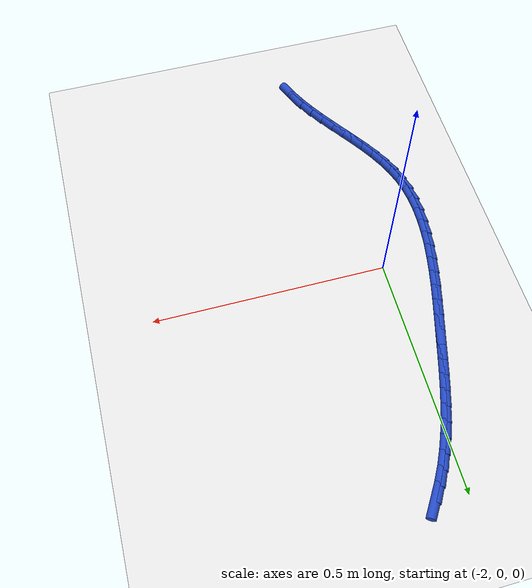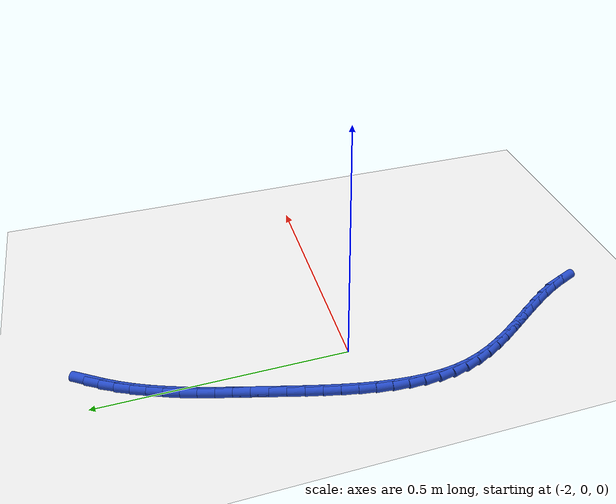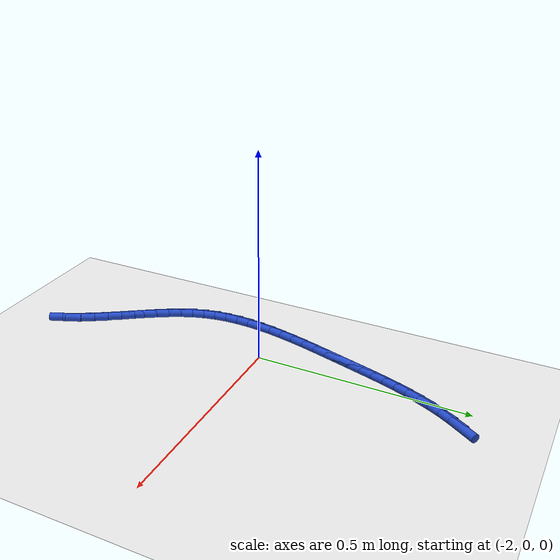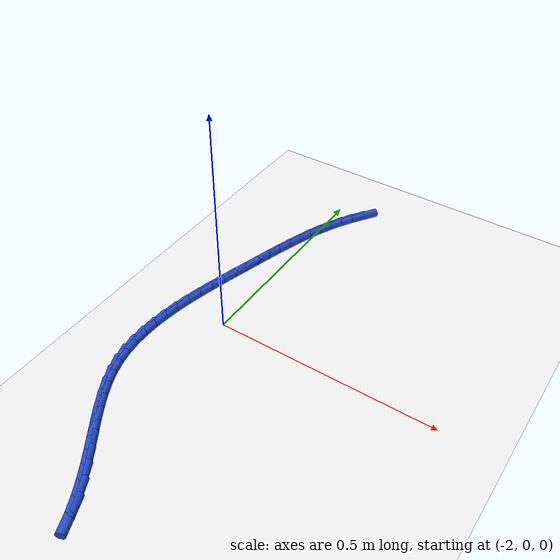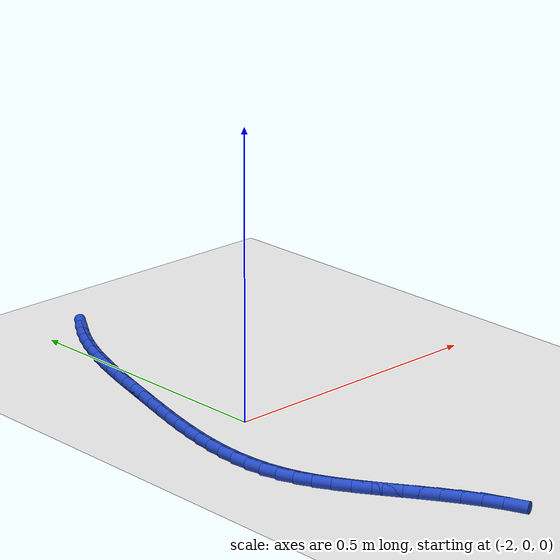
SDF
<sdf version="1.6">
 <world name="default">
  <model name="ground_plane">
   <static>1</static>
   <link name="link">
    <collision name="collision">
     <geometry><plane><normal>0 0 1</normal><size>100 100</size></plane></geometry>
     <surface><friction><ode><mu>100</mu><mu2>50</mu2></ode></friction></surface>
    </collision>
    <visual name="visual">
     <cast_shadows>0</cast_shadows>
     <geometry><plane><normal>0 0 1</normal><size>100 100</size></plane></geometry>
     <material>
      <script><uri>file://media/materials/scripts/gazebo.material</uri><name>Gazebo/WhiteGlow</name></script>
     </material>
    </visual>
   </link>
  </model>
  <model name="line">
   <link name="link_88">
    <pose>-1.9357134245684393 0.49205185494261655 0.01 0 1.57 0.9856352594177191</pose>
    <collision name="collision">
     <geometry><cylinder><radius>0.01</radius><length>0.08</length></cylinder></geometry>
    </collision>
    <visual name="visual">
     <material>
      <script><name>Gazebo/Blue</name><uri>file://media/materials/scripts/gazebo.material</uri></script>
     </material>
     <geometry><cylinder><radius>0.01</radius><length>0.08</length></cylinder></geometry>
    </visual>
   </link>
   <link name="link_89">
    <pose>-1.9528145610271608 0.4662415449356742 0.01 0 1.57 1.0383071461539708</pose>
    <collision name="collision">
     <geometry><cylinder><radius>0.01</radius><length>0.08</length></cylinder></geometry>
    </collision>
    <visual name="visual">
     <material>
      <script><name>Gazebo/Blue</name><uri>file://media/materials/scripts/gazebo.material</uri></script>
     </material>
     <geometry><cylinder><radius>0.01</radius><length>0.08</length></cylinder></geometry>
    </visual>
   </link>
   <link name="link_90">
    <pose>-1.9684713385492372 0.43967156175171307 0.01 0 1.57 1.0934983687333055</pose>
    <collision name="collision">
     <geometry><cylinder><radius>0.01</radius><length>0.08</length></cylinder></geometry>
    </collision>
    <visual name="visual">
     <material>
      <script><name>Gazebo/Blue</name><uri>file://media/materials/scripts/gazebo.material</uri></script>
     </material>
     <geometry><cylinder><radius>0.01</radius><length>0.08</length></cylinder></geometry>
    </visual>
   </link>
   <link name="link_91">
    <pose>-1.9826361275115976 0.41228312017163987 0.01 0 1.57 1.1425686386255236</pose>
    <collision name="collision">
     <geometry><cylinder><radius>0.01</radius><length>0.08</length></cylinder></geometry>
    </collision>
    <visual name="visual">
     <material>
      <script><name>Gazebo/Blue</name><uri>file://media/materials/scripts/gazebo.material</uri></script>
     </material>
     <geometry><cylinder><radius>0.01</radius><length>0.08</length></cylinder></geometry>
    </visual>
   </link>
   <link name="link_92">
    <pose>-1.995488208791405 0.3841282246084329 0.01 0 1.57 1.184762545801811</pose>
    <collision name="collision">
     <geometry><cylinder><radius>0.01</radius><length>0.08</length></cylinder></geometry>
    </collision>
    <visual name="visual">
     <material>
      <script><name>Gazebo/Blue</name><uri>file://media/materials/scripts/gazebo.material</uri></script>
     </material>
     <geometry><cylinder><radius>0.01</radius><length>0.08</length></cylinder></geometry>
    </visual>
   </link>
   <link name="link_93">
    <pose>-2.0072190455945833 0.3552648275282453 0.01 0 1.57 1.2199706552939367</pose>
    <collision name="collision">
     <geometry><cylinder><radius>0.01</radius><length>0.08</length></cylinder></geometry>
    </collision>
    <visual name="visual">
     <material>
      <script><name>Gazebo/Blue</name><uri>file://media/materials/scripts/gazebo.material</uri></script>
     </material>
     <geometry><cylinder><radius>0.01</radius><length>0.08</length></cylinder></geometry>
    </visual>
   </link>
   <link name="link_94">
    <pose>-2.018020101127056 0.3257508813972297 0.01 0 1.57 1.2482321865770525</pose>
    <collision name="collision">
     <geometry><cylinder><radius>0.01</radius><length>0.08</length></cylinder></geometry>
    </collision>
    <visual name="visual">
     <material>
      <script><name>Gazebo/Blue</name><uri>file://media/materials/scripts/gazebo.material</uri></script>
     </material>
     <geometry><cylinder><radius>0.01</radius><length>0.08</length></cylinder></geometry>
    </visual>
   </link>
   <link name="link_95">
    <pose>-2.0280828385947474 0.2956443386815381 0.01 0 1.57 1.2696811562173727</pose>
    <collision name="collision">
     <geometry><cylinder><radius>0.01</radius><length>0.08</length></cylinder></geometry>
    </collision>
    <visual name="visual">
     <material>
      <script><name>Gazebo/Blue</name><uri>file://media/materials/scripts/gazebo.material</uri></script>
     </material>
     <geometry><cylinder><radius>0.01</radius><length>0.08</length></cylinder></geometry>
    </visual>
   </link>
   <link name="link_96">
    <pose>-2.037598721203581 0.26500315184732415 0.01 0 1.57 1.284503144871986</pose>
    <collision name="collision">
     <geometry><cylinder><radius>0.01</radius><length>0.08</length></cylinder></geometry>
    </collision>
    <visual name="visual">
     <material>
      <script><name>Gazebo/Blue</name><uri>file://media/materials/scripts/gazebo.material</uri></script>
     </material>
     <geometry><cylinder><radius>0.01</radius><length>0.08</length></cylinder></geometry>
    </visual>
   </link>
   <link name="link_97">
    <pose>-2.0467592121594804 0.23388527336074005 0.01 0 1.57 1.2929041986908916</pose>
    <collision name="collision">
     <geometry><cylinder><radius>0.01</radius><length>0.08</length></cylinder></geometry>
    </collision>
    <visual name="visual">
     <material>
      <script><name>Gazebo/Blue</name><uri>file://media/materials/scripts/gazebo.material</uri></script>
     </material>
     <geometry><cylinder><radius>0.01</radius><length>0.08</length></cylinder></geometry>
    </visual>
   </link>
   <link name="link_98">
    <pose>-2.0557557746683717 0.2023486556879382 0.01 0 1.57 1.295132572178215</pose>
    <collision name="collision">
     <geometry><cylinder><radius>0.01</radius><length>0.08</length></cylinder></geometry>
    </collision>
    <visual name="visual">
     <material>
      <script><name>Gazebo/Blue</name><uri>file://media/materials/scripts/gazebo.material</uri></script>
     </material>
     <geometry><cylinder><radius>0.01</radius><length>0.08</length></cylinder></geometry>
    </visual>
   </link>
   <link name="link_99">
    <pose>-2.0647784094436585 0.17045137681444933 0.01 0 1.57 1.2954520180588465</pose>
    <collision name="collision">
     <geometry><cylinder><radius>0.01</radius><length>0.08</length></cylinder></geometry>
    </collision>
    <visual name="visual">
     <material>
      <script><name>Gazebo/Blue</name><uri>file://media/materials/scripts/gazebo.material</uri></script>
     </material>
     <geometry><cylinder><radius>0.01</radius><length>0.08</length></cylinder></geometry>
    </visual>
   </link>
   <link name="link_100">
    <pose>-2.073872007855445 0.13826396883017134 0.01 0 1.57 1.301348920833544</pose>
    <collision name="collision">
     <geometry><cylinder><radius>0.01</radius><length>0.08</length></cylinder></geometry>
    </collision>
    <visual name="visual">
     <material>
      <script><name>Gazebo/Blue</name><uri>file://media/materials/scripts/gazebo.material</uri></script>
     </material>
     <geometry><cylinder><radius>0.01</radius><length>0.08</length></cylinder></geometry>
    </visual>
   </link>
   <link name="link_101">
    <pose>-2.0828153255999458 0.10587980509340747 0.01 0 1.57 1.313628478560665</pose>
    <collision name="collision">
     <geometry><cylinder><radius>0.01</radius><length>0.08</length></cylinder></geometry>
    </collision>
    <visual name="visual">
     <material>
      <script><name>Gazebo/Blue</name><uri>file://media/materials/scripts/gazebo.material</uri></script>
     </material>
     <geometry><cylinder><radius>0.01</radius><length>0.08</length></cylinder></geometry>
    </visual>
   </link>
   <link name="link_102">
    <pose>-2.0913586224732614 0.07339470464174094 0.01 0 1.57 1.3324628008331085</pose>
    <collision name="collision">
     <geometry><cylinder><radius>0.01</radius><length>0.08</length></cylinder></geometry>
    </collision>
    <visual name="visual">
     <material>
      <script><name>Gazebo/Blue</name><uri>file://media/materials/scripts/gazebo.material</uri></script>
     </material>
     <geometry><cylinder><radius>0.01</radius><length>0.08</length></cylinder></geometry>
    </visual>
   </link>
   <link name="link_103">
    <pose>-2.0992521582714923 0.04090448651275394 0.01 0 1.57 1.3581902044370504</pose>
    <collision name="collision">
     <geometry><cylinder><radius>0.01</radius><length>0.08</length></cylinder></geometry>
    </collision>
    <visual name="visual">
     <material>
      <script><name>Gazebo/Blue</name><uri>file://media/materials/scripts/gazebo.material</uri></script>
     </material>
     <geometry><cylinder><radius>0.01</radius><length>0.08</length></cylinder></geometry>
    </visual>
   </link>
   <link name="link_104">
    <pose>-2.106246192790738 0.008504969744029056 0.01 0 1.57 1.3913069184945528</pose>
    <collision name="collision">
     <geometry><cylinder><radius>0.01</radius><length>0.08</length></cylinder></geometry>
    </collision>
    <visual name="visual">
     <material>
      <script><name>Gazebo/Blue</name><uri>file://media/materials/scripts/gazebo.material</uri></script>
     </material>
     <geometry><cylinder><radius>0.01</radius><length>0.08</length></cylinder></geometry>
    </visual>
   </link>
   <link name="link_105">
    <pose>-2.1120909858270993 -0.02370802662685119 0.01 0 1.57 1.4324524070538862</pose>
    <collision name="collision">
     <geometry><cylinder><radius>0.01</radius><length>0.08</length></cylinder></geometry>
    </collision>
    <visual name="visual">
     <material>
      <script><name>Gazebo/Blue</name><uri>file://media/materials/scripts/gazebo.material</uri></script>
     </material>
     <geometry><cylinder><radius>0.01</radius><length>0.08</length></cylinder></geometry>
    </visual>
   </link>
   <link name="link_106">
    <pose>-2.1165367971766753 -0.05563868356230499 0.01 0 1.57 1.4823787091427376</pose>
    <collision name="collision">
     <geometry><cylinder><radius>0.01</radius><length>0.08</length></cylinder></geometry>
    </collision>
    <visual name="visual">
     <material>
      <script><name>Gazebo/Blue</name><uri>file://media/materials/scripts/gazebo.material</uri></script>
     </material>
     <geometry><cylinder><radius>0.01</radius><length>0.08</length></cylinder></geometry>
    </visual>
   </link>
   <link name="link_107">
    <pose>-2.1193338866355673 -0.08719118202474826 0.01 0 1.57 1.5418896405621123</pose>
    <collision name="collision">
     <geometry><cylinder><radius>0.01</radius><length>0.08</length></cylinder></geometry>
    </collision>
    <visual name="visual">
     <material>
      <script><name>Gazebo/Blue</name><uri>file://media/materials/scripts/gazebo.material</uri></script>
     </material>
     <geometry><cylinder><radius>0.01</radius><length>0.08</length></cylinder></geometry>
    </visual>
   </link>
   <link name="link_108">
    <pose>-2.1202325139998752 -0.11826970297659928 0.01 0 1.57 -1.5298612527166557</pose>
    <collision name="collision">
     <geometry><cylinder><radius>0.01</radius><length>0.08</length></cylinder></geometry>
    </collision>
    <visual name="visual">
     <material>
      <script><name>Gazebo/Blue</name><uri>file://media/materials/scripts/gazebo.material</uri></script>
     </material>
     <geometry><cylinder><radius>0.01</radius><length>0.08</length></cylinder></geometry>
    </visual>
   </link>
   <link name="link_109">
    <pose>-2.118982939065699 -0.14877842738027544 0.01 0 1.57 -1.4491764332873172</pose>
    <collision name="collision">
     <geometry><cylinder><radius>0.01</radius><length>0.08</length></cylinder></geometry>
    </collision>
    <visual name="visual">
     <material>
      <script><name>Gazebo/Blue</name><uri>file://media/materials/scripts/gazebo.material</uri></script>
     </material>
     <geometry><cylinder><radius>0.01</radius><length>0.08</length></cylinder></geometry>
    </visual>
   </link>
   <link name="link_110">
    <pose>-2.115335421629138 -0.17862153619819415 0.01 0 1.57 -1.3576191493984873</pose>
    <collision name="collision">
     <geometry><cylinder><radius>0.01</radius><length>0.08</length></cylinder></geometry>
    </collision>
    <visual name="visual">
     <material>
      <script><name>Gazebo/Blue</name><uri>file://media/materials/scripts/gazebo.material</uri></script>
     </material>
     <geometry><cylinder><radius>0.01</radius><length>0.08</length></cylinder></geometry>
    </visual>
   </link>
   <link name="link_111">
    <pose>-2.1090402214862936 -0.207703210392773 0.01 0 1.57 -1.2576102328374283</pose>
    <collision name="collision">
     <geometry><cylinder><radius>0.01</radius><length>0.08</length></cylinder></geometry>
    </collision>
    <visual name="visual">
     <material>
      <script><name>Gazebo/Blue</name><uri>file://media/materials/scripts/gazebo.material</uri></script>
     </material>
     <geometry><cylinder><radius>0.01</radius><length>0.08</length></cylinder></geometry>
    </visual>
   </link>
   <link name="link_112">
    <pose>-2.099893673395336 -0.23594688507703088 0.01 0 1.57 -1.1664210164329967</pose>
    <collision name="collision">
     <geometry><cylinder><radius>0.01</radius><length>0.08</length></cylinder></geometry>
    </collision>
    <visual name="visual">
     <material>
      <script><name>Gazebo/Blue</name><uri>file://media/materials/scripts/gazebo.material</uri></script>
     </material>
     <geometry><cylinder><radius>0.01</radius><length>0.08</length></cylinder></geometry>
    </visual>
   </link>
   <link name="link_113">
    <pose>-2.0881211690060195 -0.26345529287472674 0.01 0 1.57 -1.0938044893693735</pose>
    <collision name="collision">
     <geometry><cylinder><radius>0.01</radius><length>0.08</length></cylinder></geometry>
    </collision>
    <visual name="visual">
     <material>
      <script><name>Gazebo/Blue</name><uri>file://media/materials/scripts/gazebo.material</uri></script>
     </material>
     <geometry><cylinder><radius>0.01</radius><length>0.08</length></cylinder></geometry>
    </visual>
   </link>
   <link name="link_114">
    <pose>-2.0741814929510136 -0.29042869841920466 0.01 0 1.57 -1.039759959326756</pose>
    <collision name="collision">
     <geometry><cylinder><radius>0.01</radius><length>0.08</length></cylinder></geometry>
    </collision>
    <visual name="visual">
     <material>
      <script><name>Gazebo/Blue</name><uri>file://media/materials/scripts/gazebo.material</uri></script>
     </material>
     <geometry><cylinder><radius>0.01</radius><length>0.08</length></cylinder></geometry>
    </visual>
   </link>
   <link name="link_115">
    <pose>-2.058535763805351 -0.3170683416691421 0.01 0 1.57 -1.0034632878693568</pose>
    <collision name="collision">
     <geometry><cylinder><radius>0.01</radius><length>0.08</length></cylinder></geometry>
    </collision>
    <visual name="visual">
     <material>
      <script><name>Gazebo/Blue</name><uri>file://media/materials/scripts/gazebo.material</uri></script>
     </material>
     <geometry><cylinder><radius>0.01</radius><length>0.08</length></cylinder></geometry>
    </visual>
   </link>
   <link name="link_116">
    <pose>-2.0416451001440654 -0.34357546258321614 0.01 0 1.57 -0.983908097104183</pose>
    <collision name="collision">
     <geometry><cylinder><radius>0.01</radius><length>0.08</length></cylinder></geometry>
    </collision>
    <visual name="visual">
     <material>
      <script><name>Gazebo/Blue</name><uri>file://media/materials/scripts/gazebo.material</uri></script>
     </material>
     <geometry><cylinder><radius>0.01</radius><length>0.08</length></cylinder></geometry>
    </visual>
   </link>
   <link name="link_117">
    <pose>-2.0239706205421917 -0.37015130112010447 0.01 0 1.57 -0.980219849405874</pose>
    <collision name="collision">
     <geometry><cylinder><radius>0.01</radius><length>0.08</length></cylinder></geometry>
    </collision>
    <visual name="visual">
     <material>
      <script><name>Gazebo/Blue</name><uri>file://media/materials/scripts/gazebo.material</uri></script>
     </material>
     <geometry><cylinder><radius>0.01</radius><length>0.08</length></cylinder></geometry>
    </visual>
   </link>
   <link name="link_118">
    <pose>-2.0059734435747627 -0.3969970972384845 0.01 0 1.57 -0.9917824638495201</pose>
    <collision name="collision">
     <geometry><cylinder><radius>0.01</radius><length>0.08</length></cylinder></geometry>
    </collision>
    <visual name="visual">
     <material>
      <script><name>Gazebo/Blue</name><uri>file://media/materials/scripts/gazebo.material</uri></script>
     </material>
     <geometry><cylinder><radius>0.01</radius><length>0.08</length></cylinder></geometry>
    </visual>
   </link>
   <link name="link_119">
    <pose>-1.9881146878168101 -0.42431409089703387 0.01 0 1.57 -1.0182361333028818</pose>
    <collision name="collision">
     <geometry><cylinder><radius>0.01</radius><length>0.08</length></cylinder></geometry>
    </collision>
    <visual name="visual">
     <material>
      <script><name>Gazebo/Blue</name><uri>file://media/materials/scripts/gazebo.material</uri></script>
     </material>
     <geometry><cylinder><radius>0.01</radius><length>0.08</length></cylinder></geometry>
    </visual>
   </link>
   <link name="link_120">
    <pose>-1.970855471843371 -0.45230352205442914 0.01 0 1.57 -1.0593796424566073</pose>
    <collision name="collision">
     <geometry><cylinder><radius>0.01</radius><length>0.08</length></cylinder></geometry>
    </collision>
    <visual name="visual">
     <material>
      <script><name>Gazebo/Blue</name><uri>file://media/materials/scripts/gazebo.material</uri></script>
     </material>
     <geometry><cylinder><radius>0.01</radius><length>0.08</length></cylinder></geometry>
    </visual>
   </link>
   <link name="link_121">
    <pose>-1.954656914229477 -0.48116663066934817 0.01 0 1.57 -1.1149881610161034</pose>
    <collision name="collision">
     <geometry><cylinder><radius>0.01</radius><length>0.08</length></cylinder></geometry>
    </collision>
    <visual name="visual">
     <material>
      <script><name>Gazebo/Blue</name><uri>file://media/materials/scripts/gazebo.material</uri></script>
     </material>
     <geometry><cylinder><radius>0.01</radius><length>0.08</length></cylinder></geometry>
    </visual>
   </link>
   <link name="link_122">
    <pose>-1.9399801335501619 -0.5111046567004682 0.01 0 1.57 -1.1797843106082713</pose>
    <collision name="collision">
     <geometry><cylinder><radius>0.01</radius><length>0.08</length></cylinder></geometry>
    </collision>
    <visual name="visual">
     <material>
      <script><name>Gazebo/Blue</name><uri>file://media/materials/scripts/gazebo.material</uri></script>
     </material>
     <geometry><cylinder><radius>0.01</radius><length>0.08</length></cylinder></geometry>
    </visual>
   </link>
  </model>
 </world>
</sdf>
